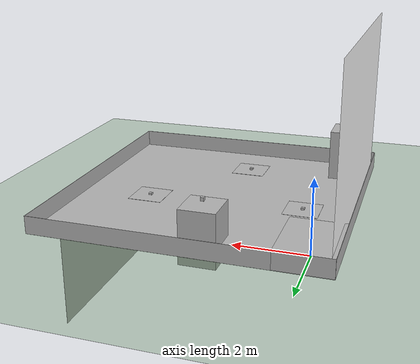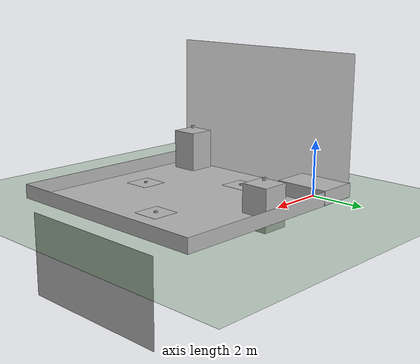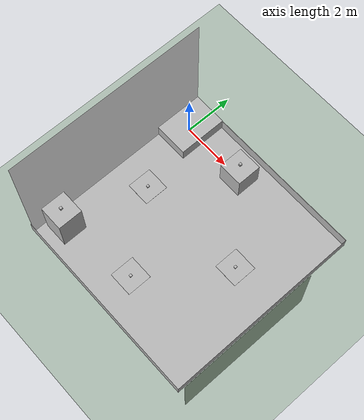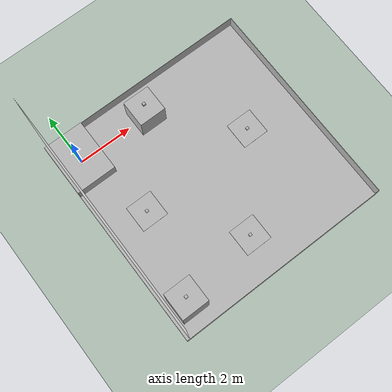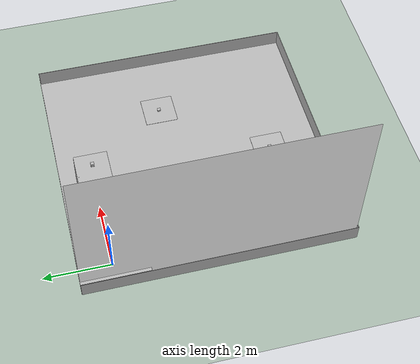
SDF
<?xml version="1.0" ?>
<sdf version="1.9">
  <world name="default">
    <plugin filename="gz-sim-physics-system" name="gz::sim::systems::Physics"/>
    <plugin filename="gz-sim-user-commands-system" name="gz::sim::systems::UserCommands"/>
    <plugin filename="gz-sim-scene-broadcaster-system" name="gz::sim::systems::SceneBroadcaster"/>
    <plugin filename="gz-sim-sensors-system" name="gz::sim::systems::Sensors">
      <render_engine>ogre2</render_engine>
    </plugin>

    <gui fullscreen="0">
      <camera name="user_camera">
        <pose>15 2 10 0 0.6 -2.64</pose>
      </camera>
    </gui>

    <light type="directional" name="sun">
      <cast_shadows>true</cast_shadows>
      <pose>250 250 600 0 0 0</pose>
      <diffuse>0.8 0.8 0.8 1</diffuse>
      <specular>0.2 0.2 0.2 1</specular>
      <direction>0 0 -1</direction>
    </light>

    <model name="ground_plane">
      <static>true</static>
      <link name="link">
        <collision name="collision">
          <geometry><plane><normal>0 0 1</normal><size>250 250</size></plane></geometry>
        </collision>
        <visual name="visual">
          <geometry><plane><normal>0 0 1</normal><size>250 250</size></plane></geometry>
          <material>
            <ambient>0.3 0.5 0.3 1</ambient>
            <diffuse>0.3 0.5 0.3 1</diffuse>
          </material>
        </visual>
      </link>
    </model>

    <include><name>arena</name><uri>model://arena_spawn</uri><pose>-0.75 -7.0 0.001 0 0 0</pose></include>
    <include><name>takeoff_platform</name><uri>model://takeoff_platform</uri><pose>0 0 0 0 0 0</pose></include>
    <include><name>banner</name><uri>model://banner</uri><pose>-0.75 -6.9 0 0 0 0</pose></include>
    <include><name>banner_2</name><uri>model://banner_2</uri><pose>-0.65 1.0 0 0 0 -1.57</pose></include>

    <include><name>landing_platform_A</name><uri>model://suspended_landing_platform</uri><pose>2.75 0.0 1.0 0 0 0</pose></include>
    <include><name>landing_platform_E</name><uri>model://suspended_landing_platform</uri><pose>0.0 -6.0 1.5 0 0 0</pose></include>

    <include><name>QRCode_box_A</name><uri>model://qrcode_box_a</uri><pose>0 -6.0 1.65 0 0 0</pose></include>
    <include><name>QRCode_box_E</name><uri>model://qrcode_box_e</uri><pose>2.75 0.0 1.15 0 0 0</pose></include>
    <include><name>QRCode_box_B</name><uri>model://qrcode_box_b</uri><pose>3 -5.5 0.01 0 0 0</pose></include>
    <include><name>QRCode_box_C</name><uri>model://qrcode_box_c</uri><pose>0.75 -2.75 0.01 0 0 0</pose></include>
    <include><name>QRCode_box_D</name><uri>model://qrcode_box_d</uri><pose>5.25 -2.5 0.01 0 0 0</pose></include>

    <include><name>landing_platform_B</name><uri>model://landing_platform</uri><pose>5.25 -2.5 0.005 0 0 0</pose></include>
    <include><name>landing_platform_C</name><uri>model://landing_platform</uri><pose>3 -5.5 0.005 0 0 0</pose></include>
    <include><name>landing_platform_D</name><uri>model://landing_platform</uri><pose>0.75 -2.75 0.005 0 0 0</pose></include>

  </world>
</sdf>

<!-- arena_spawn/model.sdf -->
<sdf version='1.9'>
  <model name='arena_spawn'>
    <link name='link_arena'>
      <inertial>
        <mass>15.0</mass>
        <inertia>
          <ixx>1.0</ixx>
          <ixy>0.0</ixy>
          <ixz>0.0</ixz>
          <iyy>1.0</iyy>
          <iyz>0.0</iyz>
          <izz>1.0</izz>
        </inertia>
      </inertial>
      <pose>0 0 0 0 0 0</pose>
      <visual name='visual'>
        <geometry>
          <mesh>
            <uri>model://arena_spawn/meshes/Arena.obj</uri>
            <scale>1.0 1.0 1.0</scale>
          </mesh>
        </geometry>
      </visual>
      <collision name='collision'>
        <geometry>
          <mesh>
            <uri>model://arena_spawn/meshes/Arena.obj</uri>
            <scale>1.0 1.0 1.0</scale>
          </mesh>
        </geometry>
        </collision>
    </link>
    <static>true</static>
  </model>
</sdf>

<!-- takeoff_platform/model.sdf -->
<sdf version='1.6'>
  <model name='takeoff_platform'>
    <link name='link_takeoff_platform'>
      <inertial>
        <mass>15</mass>
        <inertia>
          <ixx>1</ixx>
          <ixy>0</ixy>
          <ixz>0</ixz>
          <iyy>1</iyy>
          <iyz>0</iyz>
          <izz>1</izz>
        </inertia>
      </inertial>
      <self_collide>1</self_collide>
      <enable_wind>0</enable_wind>
      <kinematic>0</kinematic>
      <pose frame=''>0 0 0 0 -0 0</pose>
      <visual name='visual'>
        <pose frame=''>0 0 0 0 -0 0</pose>
        <geometry>
          <mesh>
            <uri>model://takeoff_platform/meshes/takeoff_platform.obj</uri>
            <scale>1 1 1</scale>
          </mesh>
        </geometry>
        <transparency>0</transparency>
        <cast_shadows>1</cast_shadows>
      </visual>
      <collision name='collision'>
        <laser_retro>0</laser_retro>
        <max_contacts>10</max_contacts>
        <pose frame=''>0 0 0 0 -0 0</pose>
        <geometry>
          <mesh>
            <uri>model://takeoff_platform/meshes/takeoff_platform.obj</uri>
            <scale>1 1 1</scale>
          </mesh>
        </geometry>
        <surface>
          <friction>
            <ode>
              <mu>1</mu>
              <mu2>1</mu2>
              <fdir1>0 0 0</fdir1>
              <slip1>0</slip1>
              <slip2>0</slip2>
            </ode>
            <torsional>
              <coefficient>1</coefficient>
              <patch_radius>100</patch_radius>
              <surface_radius>100</surface_radius>
              <use_patch_radius>1</use_patch_radius>
              <ode>
                <slip>0</slip>
              </ode>
            </torsional>
          </friction>
          <bounce>
            <restitution_coefficient>0</restitution_coefficient>
            <threshold>1e+06</threshold>
          </bounce>
          <contact>
            <collide_without_contact>0</collide_without_contact>
            <collide_without_contact_bitmask>1</collide_without_contact_bitmask>
            <collide_bitmask>1</collide_bitmask>
            <ode>
              <soft_cfm>0</soft_cfm>
              <soft_erp>0.2</soft_erp>
              <kp>1e+13</kp>
              <kd>1</kd>
              <max_vel>0.01</max_vel>
              <min_depth>0</min_depth>
            </ode>
            <bullet>
              <split_impulse>1</split_impulse>
              <split_impulse_penetration_threshold>-0.01</split_impulse_penetration_threshold>
              <soft_cfm>0</soft_cfm>
              <soft_erp>0.2</soft_erp>
              <kp>1e+13</kp>
              <kd>1</kd>
            </bullet>
          </contact>
        </surface>
      </collision>
    </link>
    <static>1</static>
    <pose frame=''>0 0 0.0005 0 -0 0</pose>
  </model>
</sdf>

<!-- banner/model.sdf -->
<sdf version='1.9'>
  <model name='banner'>
    <link name='link_0'>
      <inertial>
        <mass>1</mass>
        <inertia>
          <ixx>0.166667</ixx> <ixy>0</ixy> <ixz>0</ixz>
          <iyy>0.166667</iyy> <iyz>0</iyz> <izz>0.166667</izz>
        </inertia>
      </inertial>
      <pose>0 0 0 0 0 0</pose>
      <visual name='visual'>
        <geometry>
          <mesh>
            <uri>model://banner/meshes/banner.obj</uri>
            <scale>1.0 1.0 1.0</scale>
          </mesh>
        </geometry>
      </visual>
      <collision name='collision'>
        <geometry>
          <mesh>
            <uri>model://banner/meshes/banner.obj</uri>
            <scale>1.0 1.0 1.0</scale>
          </mesh>
        </geometry>
      </collision>
    </link>
    <static>true</static>
  </model>
</sdf>

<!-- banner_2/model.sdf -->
<sdf version='1.9'>
  <model name='banner_2'>
    <link name='link_0'>
      <inertial>
        <mass>1.0</mass>
        <inertia>
          <ixx>0.166667</ixx>
          <ixy>0.0</ixy>
          <ixz>0.0</ixz>
          <iyy>0.166667</iyy>
          <iyz>0.0</iyz>
          <izz>0.166667</izz>
        </inertia>
      </inertial>
      <pose>0 0 0 0 0 0</pose>
      <visual name='visual'>
        <geometry>
          <mesh>
            <uri>model://banner_2/meshes/banner.obj</uri>
            <scale>1.0 1.0 1.0</scale>
          </mesh>
        </geometry>
        <material>
          <ambient>1 1 1 1</ambient>
          <diffuse>1 1 1 1</diffuse>
          <specular>0.5 0.5 0.5 1</specular>
        </material>
      </visual>
      <collision name='collision'>
        <geometry>
          <mesh>
            <uri>model://banner_2/meshes/banner.obj</uri>
            <scale>1.0 1.0 1.0</scale>
          </mesh>
        </geometry>
      </collision>
    </link>
    <static>true</static>
  </model>
</sdf>

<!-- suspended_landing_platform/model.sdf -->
<sdf version='1.6'>
  <model name='suspended_landing_platform'>
    <link name='link_suspended_landing_platform'>
      <inertial>
        <mass>1</mass>
        <inertia>
          <ixx>0.166667</ixx>
          <ixy>0</ixy>
          <ixz>0</ixz>
          <iyy>0.166667</iyy>
          <iyz>0</iyz>
          <izz>0.166667</izz>
        </inertia>
        <pose>0 0 0 0 -0 0</pose>
      </inertial>
      <self_collide>0</self_collide>
      <enable_wind>0</enable_wind>
      <kinematic>0</kinematic>
      <pose>0 0 0 0 -0 0</pose>
      <gravity>1</gravity>
      <visual name='visual'>
        <pose frame=''>0 0 0 0 -0 0</pose>
        <geometry>
          <mesh>
            <uri>model://suspended_landing_platform/meshes/suspended_landing_platform.obj</uri>
            <scale>1 1 1</scale>
          </mesh>
        </geometry>
        <transparency>0</transparency>
        <cast_shadows>1</cast_shadows>
      </visual>
      <collision name='collision'>
        <laser_retro>0</laser_retro>
        <max_contacts>10</max_contacts>
        <pose>0 0 -0.75 0 -0 0</pose>
        <geometry>
          <box>
            <size>1 1 1.5</size>
          </box>
        </geometry>
        <surface>
          <friction>
            <ode>
              <mu>100</mu>
              <mu2>100</mu2>
              <fdir1>0 0 0</fdir1>
              <slip1>0</slip1>
              <slip2>0</slip2>
            </ode>
            <torsional>
              <coefficient>1</coefficient>
              <patch_radius>1</patch_radius>
              <surface_radius>1</surface_radius>
              <use_patch_radius>1</use_patch_radius>
              <ode>
                <slip>0</slip>
              </ode>
            </torsional>
          </friction>
          <bounce>
            <restitution_coefficient>1</restitution_coefficient>
            <threshold>1e+06</threshold>
          </bounce>
          <contact>
            <collide_without_contact>0</collide_without_contact>
            <collide_without_contact_bitmask>1</collide_without_contact_bitmask>
            <collide_bitmask>1</collide_bitmask>
            <ode>
              <soft_cfm>0</soft_cfm>
              <soft_erp>0.2</soft_erp>
              <kp>1e+13</kp>
              <kd>1</kd>
              <max_vel>0.01</max_vel>
              <min_depth>0</min_depth>
            </ode>
            <bullet>
              <split_impulse>1</split_impulse>
              <split_impulse_penetration_threshold>-0.01</split_impulse_penetration_threshold>
              <soft_cfm>0</soft_cfm>
              <soft_erp>0.2</soft_erp>
              <kp>1e+13</kp>
              <kd>1</kd>
            </bullet>
          </contact>
        </surface>
      </collision>
    </link>
    <static>1</static>
    <allow_auto_disable>1</allow_auto_disable>
  </model>
</sdf>

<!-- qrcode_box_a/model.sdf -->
<sdf version='1.6'>
  <model name='qrcode_box_a'>
    <link name='link_qrcode_box_a'>
      <inertial>
        <mass>0.160</mass>
        <inertia>
          <ixx>0.000272</ixx>
          <ixy>0</ixy>
          <ixz>0</ixz>
          <iyy>0.000272</iyy>
          <iyz>0</iyz>
          <izz>0.000272</izz>
        </inertia>
        <pose>0 0 0 0 -0 0</pose>
      </inertial>
      <self_collide>0</self_collide>
      <enable_wind>0</enable_wind>
      <kinematic>0</kinematic>
      <pose>0 0 0 0 -0 0</pose>
      <gravity>1</gravity>
      <visual name='visual'>
        <pose frame=''>0 0 0 0 -0 0</pose>
        <geometry>
          <mesh>
            <uri>model://qrcode_box_a/meshes/qrcode_box_a.obj</uri>
            <scale>1 1 1</scale>
          </mesh>
        </geometry>
        <transparency>0</transparency>
        <cast_shadows>1</cast_shadows>
      </visual>
      <collision name='collision'>
        <laser_retro>1</laser_retro>
        <max_contacts>100000</max_contacts>
        <pose>0 0 0 0 -0 0</pose>
        <geometry>
          <box>
            <size>0.1 0.1 0.1</size>
          </box>
        </geometry>
        <surface>
          <friction>
            <ode>
              <mu>1</mu>
              <mu2>1</mu2>
              <fdir1>0 0 0</fdir1>
              <slip1>0</slip1>
              <slip2>0</slip2>
            </ode>
            <torsional>
              <coefficient>1</coefficient>
              <patch_radius>1</patch_radius>
              <surface_radius>1</surface_radius>
              <use_patch_radius>1</use_patch_radius>
              <ode>
                <slip>0</slip>
              </ode>
            </torsional>
          </friction>
          <bounce>
            <restitution_coefficient>0</restitution_coefficient>
            <threshold>1e+06</threshold>
          </bounce>
          <contact>
            <collide_without_contact>0</collide_without_contact>
            <collide_without_contact_bitmask>1</collide_without_contact_bitmask>
            <collide_bitmask>1</collide_bitmask>
            <ode>
              <soft_cfm>0</soft_cfm>
              <soft_erp>0.2</soft_erp>
              <kp>1e+13</kp>
              <kd>1</kd>
              <max_vel>0.01</max_vel>
              <min_depth>0</min_depth>
            </ode>
            <bullet>
              <split_impulse>1</split_impulse>
              <split_impulse_penetration_threshold>-0.01</split_impulse_penetration_threshold>
              <soft_cfm>0</soft_cfm>
              <soft_erp>0.2</soft_erp>
              <kp>1e+13</kp>
              <kd>1</kd>
            </bullet>
          </contact>
        </surface>
      </collision>
    </link>
    <static>0</static>
    <allow_auto_disable>1</allow_auto_disable>
  </model>
</sdf>

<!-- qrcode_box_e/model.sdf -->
<sdf version='1.6'>
  <model name='qrcode_box_e'>
    <link name='link_qrcode_box_e'>
      <inertial>
        <mass>0.160</mass>
        <inertia>
          <ixx>0.000272</ixx>
          <ixy>0</ixy>
          <ixz>0</ixz>
          <iyy>0.000272</iyy>
          <iyz>0</iyz>
          <izz>0.000272</izz>
        </inertia>
        <pose>0 0 0 0 -0 0</pose>
      </inertial>
      <self_collide>0</self_collide>
      <enable_wind>0</enable_wind>
      <kinematic>0</kinematic>
      <pose>0 0 0 0 -0 0</pose>
      <gravity>1</gravity>
      <visual name='visual'>
        <pose frame=''>0 0 0 0 -0 0</pose>
        <geometry>
          <mesh>
            <uri>model://qrcode_box_e/meshes/qrcode_box_e.obj</uri>
            <scale>1 1 1</scale>
          </mesh>
        </geometry>
        <transparency>0</transparency>
        <cast_shadows>1</cast_shadows>
      </visual>
      <collision name='collision'>
        <laser_retro>1</laser_retro>
        <max_contacts>100000</max_contacts>
        <pose>0 0 0 0 -0 0</pose>
        <geometry>
          <box>
            <size>0.1 0.1 0.1</size>
          </box>
        </geometry>
        <surface>
          <friction>
            <ode>
              <mu>1</mu>
              <mu2>1</mu2>
              <fdir1>0 0 0</fdir1>
              <slip1>0</slip1>
              <slip2>0</slip2>
            </ode>
            <torsional>
              <coefficient>1</coefficient>
              <patch_radius>1</patch_radius>
              <surface_radius>1</surface_radius>
              <use_patch_radius>1</use_patch_radius>
              <ode>
                <slip>0</slip>
              </ode>
            </torsional>
          </friction>
          <bounce>
            <restitution_coefficient>0</restitution_coefficient>
            <threshold>1e+06</threshold>
          </bounce>
          <contact>
            <collide_without_contact>0</collide_without_contact>
            <collide_without_contact_bitmask>1</collide_without_contact_bitmask>
            <collide_bitmask>1</collide_bitmask>
            <ode>
              <soft_cfm>0</soft_cfm>
              <soft_erp>0.2</soft_erp>
              <kp>1e+13</kp>
              <kd>1</kd>
              <max_vel>0.01</max_vel>
              <min_depth>0</min_depth>
            </ode>
            <bullet>
              <split_impulse>1</split_impulse>
              <split_impulse_penetration_threshold>-0.01</split_impulse_penetration_threshold>
              <soft_cfm>0</soft_cfm>
              <soft_erp>0.2</soft_erp>
              <kp>1e+13</kp>
              <kd>1</kd>
            </bullet>
          </contact>
        </surface>
      </collision>
    </link>
    <static>0</static>
    <allow_auto_disable>1</allow_auto_disable>
  </model>
</sdf>

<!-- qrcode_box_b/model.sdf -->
<sdf version='1.6'>
  <model name='qrcode_box_b'>
    <link name='link_qrcode_box_b'>
      <inertial>
        <mass>0.160</mass>
        <inertia>
          <ixx>0.000272</ixx>
          <ixy>0</ixy>
          <ixz>0</ixz>
          <iyy>0.000272</iyy>
          <iyz>0</iyz>
          <izz>0.000272</izz>
        </inertia>
        <pose>0 0 0 0 -0 0</pose>
      </inertial>
      <self_collide>0</self_collide>
      <enable_wind>0</enable_wind>
      <kinematic>0</kinematic>
      <pose>0 0 0 0 -0 0</pose>
      <gravity>1</gravity>
      <visual name='visual'>
        <pose frame=''>0 0 0 0 -0 0</pose>
        <geometry>
          <mesh>
            <uri>model://qrcode_box_b/meshes/qrcode_box_b.obj</uri>
            <scale>1 1 1</scale>
          </mesh>
        </geometry>
        <transparency>0</transparency>
        <cast_shadows>1</cast_shadows>
      </visual>
      <collision name='collision'>
        <laser_retro>1</laser_retro>
        <max_contacts>100000</max_contacts>
        <pose>0 0 0 0 -0 0</pose>
        <geometry>
          <box>
            <size>0.1 0.1 0.1</size>
          </box>
        </geometry>
        <surface>
          <friction>
            <ode>
              <mu>1</mu>
              <mu2>1</mu2>
              <fdir1>0 0 0</fdir1>
              <slip1>0</slip1>
              <slip2>0</slip2>
            </ode>
            <torsional>
              <coefficient>1</coefficient>
              <patch_radius>1</patch_radius>
              <surface_radius>1</surface_radius>
              <use_patch_radius>1</use_patch_radius>
              <ode>
                <slip>0</slip>
              </ode>
            </torsional>
          </friction>
          <bounce>
            <restitution_coefficient>0</restitution_coefficient>
            <threshold>1e+06</threshold>
          </bounce>
          <contact>
            <collide_without_contact>0</collide_without_contact>
            <collide_without_contact_bitmask>1</collide_without_contact_bitmask>
            <collide_bitmask>1</collide_bitmask>
            <ode>
              <soft_cfm>0</soft_cfm>
              <soft_erp>0.2</soft_erp>
              <kp>1e+13</kp>
              <kd>1</kd>
              <max_vel>0.01</max_vel>
              <min_depth>0</min_depth>
            </ode>
            <bullet>
              <split_impulse>1</split_impulse>
              <split_impulse_penetration_threshold>-0.01</split_impulse_penetration_threshold>
              <soft_cfm>0</soft_cfm>
              <soft_erp>0.2</soft_erp>
              <kp>1e+13</kp>
              <kd>1</kd>
            </bullet>
          </contact>
        </surface>
      </collision>
    </link>
    <static>0</static>
    <allow_auto_disable>1</allow_auto_disable>
  </model>
</sdf>

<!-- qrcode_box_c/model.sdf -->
<sdf version='1.6'>
  <model name='qrcode_box_c'>
    <link name='link_qrcode_box_c'>
      <inertial>
        <mass>0.160</mass>
        <inertia>
          <ixx>0.000272</ixx>
          <ixy>0</ixy>
          <ixz>0</ixz>
          <iyy>0.000272</iyy>
          <iyz>0</iyz>
          <izz>0.000272</izz>
        </inertia>
        <pose>0 0 0 0 -0 0</pose>
      </inertial>
      <self_collide>0</self_collide>
      <enable_wind>0</enable_wind>
      <kinematic>0</kinematic>
      <pose>0 0 0 0 -0 0</pose>
      <gravity>1</gravity>
      <visual name='visual'>
        <pose frame=''>0 0 0 0 -0 0</pose>
        <geometry>
          <mesh>
            <uri>model://qrcode_box_c/meshes/qrcode_box_c.obj</uri>
            <scale>1 1 1</scale>
          </mesh>
        </geometry>
        <transparency>0</transparency>
        <cast_shadows>1</cast_shadows>
      </visual>
      <collision name='collision'>
        <laser_retro>1</laser_retro>
        <max_contacts>100000</max_contacts>
        <pose>0 0 0 0 -0 0</pose>
        <geometry>
          <box>
            <size>0.1 0.1 0.1</size>
          </box>
        </geometry>
        <surface>
          <friction>
            <ode>
              <mu>1</mu>
              <mu2>1</mu2>
              <fdir1>0 0 0</fdir1>
              <slip1>0</slip1>
              <slip2>0</slip2>
            </ode>
            <torsional>
              <coefficient>1</coefficient>
              <patch_radius>1</patch_radius>
              <surface_radius>1</surface_radius>
              <use_patch_radius>1</use_patch_radius>
              <ode>
                <slip>0</slip>
              </ode>
            </torsional>
          </friction>
          <bounce>
            <restitution_coefficient>0</restitution_coefficient>
            <threshold>1e+06</threshold>
          </bounce>
          <contact>
            <collide_without_contact>0</collide_without_contact>
            <collide_without_contact_bitmask>1</collide_without_contact_bitmask>
            <collide_bitmask>1</collide_bitmask>
            <ode>
              <soft_cfm>0</soft_cfm>
              <soft_erp>0.2</soft_erp>
              <kp>1e+13</kp>
              <kd>1</kd>
              <max_vel>0.01</max_vel>
              <min_depth>0</min_depth>
            </ode>
            <bullet>
              <split_impulse>1</split_impulse>
              <split_impulse_penetration_threshold>-0.01</split_impulse_penetration_threshold>
              <soft_cfm>0</soft_cfm>
              <soft_erp>0.2</soft_erp>
              <kp>1e+13</kp>
              <kd>1</kd>
            </bullet>
          </contact>
        </surface>
      </collision>
    </link>
    <static>0</static>
    <allow_auto_disable>1</allow_auto_disable>
  </model>
</sdf>

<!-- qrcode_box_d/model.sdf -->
<sdf version='1.6'>
  <model name='qrcode_box_d'>
    <link name='link_qrcode_box_d'>
      <inertial>
        <mass>0.160</mass>
        <inertia>
          <ixx>0.000272</ixx>
          <ixy>0</ixy>
          <ixz>0</ixz>
          <iyy>0.000272</iyy>
          <iyz>0</iyz>
          <izz>0.000272</izz>
        </inertia>
        <pose>0 0 0 0 -0 0</pose>
      </inertial>
      <self_collide>0</self_collide>
      <enable_wind>0</enable_wind>
      <kinematic>0</kinematic>
      <pose>0 0 0 0 -0 0</pose>
      <gravity>1</gravity>
      <visual name='visual'>
        <pose frame=''>0 0 0 0 -0 0</pose>
        <geometry>
          <mesh>
            <uri>model://qrcode_box_d/meshes/qrcode_box_d.obj</uri>
            <scale>1 1 1</scale>
          </mesh>
        </geometry>
        <transparency>0</transparency>
        <cast_shadows>1</cast_shadows>
      </visual>
      <collision name='collision'>
        <laser_retro>1</laser_retro>
        <max_contacts>100000</max_contacts>
        <pose>0 0 0 0 -0 0</pose>
        <geometry>
          <box>
            <size>0.1 0.1 0.1</size>
          </box>
        </geometry>
        <surface>
          <friction>
            <ode>
              <mu>1</mu>
              <mu2>1</mu2>
              <fdir1>0 0 0</fdir1>
              <slip1>0</slip1>
              <slip2>0</slip2>
            </ode>
            <torsional>
              <coefficient>1</coefficient>
              <patch_radius>1</patch_radius>
              <surface_radius>1</surface_radius>
              <use_patch_radius>1</use_patch_radius>
              <ode>
                <slip>0</slip>
              </ode>
            </torsional>
          </friction>
          <bounce>
            <restitution_coefficient>0</restitution_coefficient>
            <threshold>1e+06</threshold>
          </bounce>
          <contact>
            <collide_without_contact>0</collide_without_contact>
            <collide_without_contact_bitmask>1</collide_without_contact_bitmask>
            <collide_bitmask>1</collide_bitmask>
            <ode>
              <soft_cfm>0</soft_cfm>
              <soft_erp>0.2</soft_erp>
              <kp>1e+13</kp>
              <kd>1</kd>
              <max_vel>0.01</max_vel>
              <min_depth>0</min_depth>
            </ode>
            <bullet>
              <split_impulse>1</split_impulse>
              <split_impulse_penetration_threshold>-0.01</split_impulse_penetration_threshold>
              <soft_cfm>0</soft_cfm>
              <soft_erp>0.2</soft_erp>
              <kp>1e+13</kp>
              <kd>1</kd>
            </bullet>
          </contact>
        </surface>
      </collision>
    </link>
    <static>0</static>
    <allow_auto_disable>1</allow_auto_disable>
  </model>
</sdf>

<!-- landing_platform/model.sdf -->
<sdf version='1.6'>
  <model name='landing_platform'>
    <link name='link_landing_platform'>
      <inertial>
        <mass>1</mass>
        <inertia>
          <ixx>0.09318</ixx>
          <ixy>0.0</ixy>
          <ixz>0</ixz>
          <iyy>0.09318</iyy>
          <iyz>0</iyz>
          <izz>0.18634</izz>
        </inertia>
        <pose>0 0 0 0 -0 0</pose>
      </inertial>
      <self_collide>0</self_collide>
      <enable_wind>0</enable_wind>
      <kinematic>0</kinematic>
      <pose>0 0 0 0 -0 0</pose>
      <gravity>1</gravity>
      <visual name='visual'>
        <pose frame=''>0 0 0 0 -0 0</pose>
        <geometry>
          <mesh>
            <uri>model://landing_platform/meshes/landing_platform.obj</uri>
            <scale>1 1 1</scale>
          </mesh>
        </geometry>
        <transparency>0</transparency>
        <cast_shadows>1</cast_shadows>
      </visual>
      <collision name='collision'>
        <laser_retro>0</laser_retro>
        <max_contacts>10</max_contacts>
        <pose>0 0 0 0 -0 0</pose>
        <geometry>
          <box>
            <size>1 1 0.005</size>
          </box>
        </geometry>
      </collision>
      <surface>
        <friction>
          <ode>
            <mu>100</mu>
            <mu2>100</mu2>
            <fdir1>0 0 0</fdir1>
            <slip1>0</slip1>
            <slip2>0</slip2>
          </ode>
          <torsional>
            <coefficient>1</coefficient>
            <patch_radius>1</patch_radius>
            <surface_radius>1</surface_radius>
            <use_patch_radius>1</use_patch_radius>
            <ode>
              <slip>0</slip>
            </ode>
          </torsional>
        </friction>
        <bounce>
          <restitution_coefficient>1</restitution_coefficient>
          <threshold>1e+06</threshold>
        </bounce>
        <contact>
          <collide_without_contact>0</collide_without_contact>
          <collide_without_contact_bitmask>1</collide_without_contact_bitmask>
          <collide_bitmask>1</collide_bitmask>
          <ode>
            <soft_cfm>0</soft_cfm>
            <soft_erp>0.2</soft_erp>
            <kp>1e+13</kp>
            <kd>1</kd>
            <max_vel>0.01</max_vel>
            <min_depth>0</min_depth>
          </ode>
          <bullet>
            <split_impulse>1</split_impulse>
            <split_impulse_penetration_threshold>-0.01</split_impulse_penetration_threshold>
            <soft_cfm>0</soft_cfm>
            <soft_erp>0.2</soft_erp>
            <kp>1e+13</kp>
            <kd>1</kd>
          </bullet>
        </contact>
      </surface>
    </link>
    <static>0</static>
    <allow_auto_disable>1</allow_auto_disable>
  </model>
</sdf>
